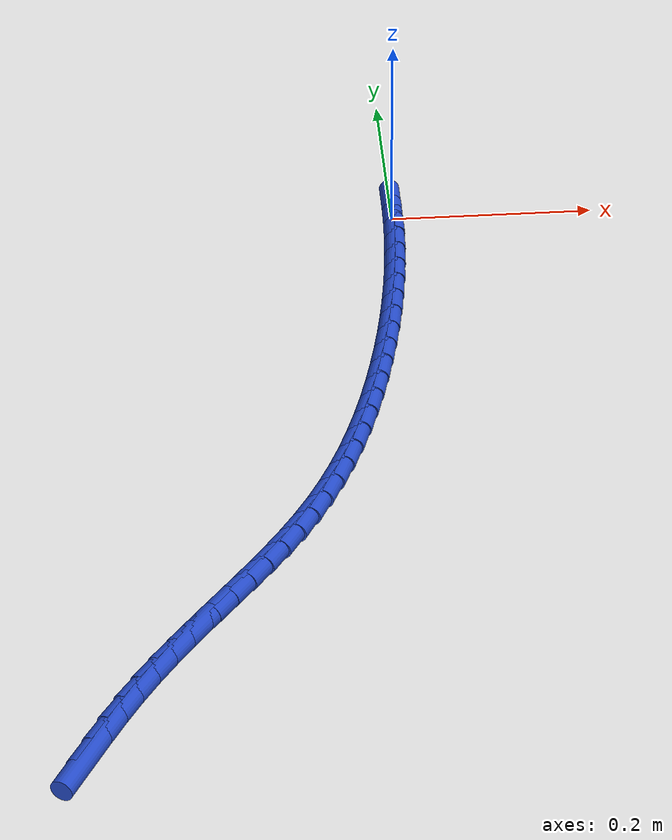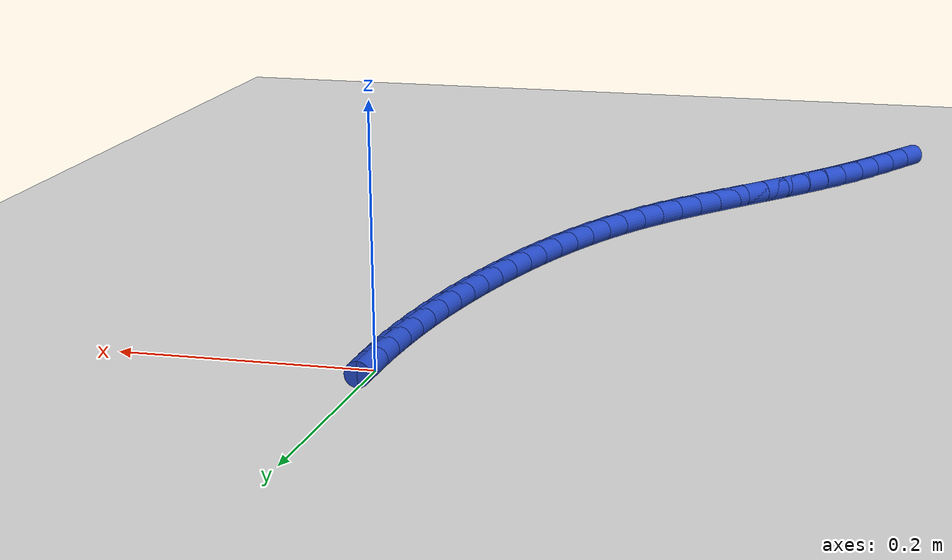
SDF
<sdf version="1.6">
 <world name="default">
  <model name="ground_plane">
   <static>1</static>
   <link name="link">
    <collision name="collision">
     <geometry><plane><normal>0 0 1</normal><size>100 100</size></plane></geometry>
     <surface><friction><ode><mu>100</mu><mu2>50</mu2></ode></friction></surface>
    </collision>
    <visual name="visual">
     <cast_shadows>0</cast_shadows>
     <geometry><plane><normal>0 0 1</normal><size>100 100</size></plane></geometry>
     <material>
      <script><uri>file://media/materials/scripts/gazebo.material</uri><name>Gazebo/WhiteGlow</name></script>
     </material>
    </visual>
   </link>
  </model>
  <model name="line">
   <link name="link_0">
    <pose>-1.6479873021779667e-17 0.0 0.01 0 1.57 1.5654204564833294</pose>
    <collision name="collision">
     <geometry><cylinder><radius>0.01</radius><length>0.08</length></cylinder></geometry>
    </collision>
    <visual name="visual">
     <material>
      <script><name>Gazebo/Blue</name><uri>file://media/materials/scripts/gazebo.material</uri></script>
     </material>
     <geometry><cylinder><radius>0.01</radius><length>0.08</length></cylinder></geometry>
    </visual>
   </link>
   <link name="link_238">
    <pose>-0.309870538612031 -0.744926974488012 0.01 0 1.57 1.0686161047486882</pose>
    <collision name="collision">
     <geometry><cylinder><radius>0.01</radius><length>0.08</length></cylinder></geometry>
    </collision>
    <visual name="visual">
     <material>
      <script><name>Gazebo/Blue</name><uri>file://media/materials/scripts/gazebo.material</uri></script>
     </material>
     <geometry><cylinder><radius>0.01</radius><length>0.08</length></cylinder></geometry>
    </visual>
   </link>
   <link name="link_239">
    <pose>-0.2969129126841725 -0.7213306199960554 0.01 0 1.57 1.052419311863767</pose>
    <collision name="collision">
     <geometry><cylinder><radius>0.01</radius><length>0.08</length></cylinder></geometry>
    </collision>
    <visual name="visual">
     <material>
      <script><name>Gazebo/Blue</name><uri>file://media/materials/scripts/gazebo.material</uri></script>
     </material>
     <geometry><cylinder><radius>0.01</radius><length>0.08</length></cylinder></geometry>
    </visual>
   </link>
   <link name="link_240">
    <pose>-0.2836207318588985 -0.6980277166041239 0.01 0 1.57 1.0267282334846566</pose>
    <collision name="collision">
     <geometry><cylinder><radius>0.01</radius><length>0.08</length></cylinder></geometry>
    </collision>
    <visual name="visual">
     <material>
      <script><name>Gazebo/Blue</name><uri>file://media/materials/scripts/gazebo.material</uri></script>
     </material>
     <geometry><cylinder><radius>0.01</radius><length>0.08</length></cylinder></geometry>
    </visual>
   </link>
   <link name="link_241">
    <pose>-0.26982788802805663 -0.6752286099682115 0.01 0 1.57 0.9920861693508077</pose>
    <collision name="collision">
     <geometry><cylinder><radius>0.01</radius><length>0.08</length></cylinder></geometry>
    </collision>
    <visual name="visual">
     <material>
      <script><name>Gazebo/Blue</name><uri>file://media/materials/scripts/gazebo.material</uri></script>
     </material>
     <geometry><cylinder><radius>0.01</radius><length>0.08</length></cylinder></geometry>
    </visual>
   </link>
   <link name="link_242">
    <pose>-0.25538652353177604 -0.6531242495241607 0.01 0 1.57 0.9586124981060093</pose>
    <collision name="collision">
     <geometry><cylinder><radius>0.01</radius><length>0.08</length></cylinder></geometry>
    </collision>
    <visual name="visual">
     <material>
      <script><name>Gazebo/Blue</name><uri>file://media/materials/scripts/gazebo.material</uri></script>
     </material>
     <geometry><cylinder><radius>0.01</radius><length>0.08</length></cylinder></geometry>
    </visual>
   </link>
   <link name="link_243">
    <pose>-0.24034264605525366 -0.6316995484037439 0.01 0 1.57 0.932827848580773</pose>
    <collision name="collision">
     <geometry><cylinder><radius>0.01</radius><length>0.08</length></cylinder></geometry>
    </collision>
    <visual name="visual">
     <material>
      <script><name>Gazebo/Blue</name><uri>file://media/materials/scripts/gazebo.material</uri></script>
     </material>
     <geometry><cylinder><radius>0.01</radius><length>0.08</length></cylinder></geometry>
    </visual>
   </link>
   <link name="link_244">
    <pose>-0.2248591647391064 -0.6108151791540717 0.01 0 1.57 0.9150758086695943</pose>
    <collision name="collision">
     <geometry><cylinder><radius>0.01</radius><length>0.08</length></cylinder></geometry>
    </collision>
    <visual name="visual">
     <material>
      <script><name>Gazebo/Blue</name><uri>file://media/materials/scripts/gazebo.material</uri></script>
     </material>
     <geometry><cylinder><radius>0.01</radius><length>0.08</length></cylinder></geometry>
    </visual>
   </link>
   <link name="link_245">
    <pose>-0.20910060074070222 -0.5903301011023262 0.01 0 1.57 0.9055422296610491</pose>
    <collision name="collision">
     <geometry><cylinder><radius>0.01</radius><length>0.08</length></cylinder></geometry>
    </collision>
    <visual name="visual">
     <material>
      <script><name>Gazebo/Blue</name><uri>file://media/materials/scripts/gazebo.material</uri></script>
     </material>
     <geometry><cylinder><radius>0.01</radius><length>0.08</length></cylinder></geometry>
    </visual>
   </link>
   <link name="link_246">
    <pose>-0.19323147521740755 -0.5701032735756887 0.01 0 1.57 0.9043736813544545</pose>
    <collision name="collision">
     <geometry><cylinder><radius>0.01</radius><length>0.08</length></cylinder></geometry>
    </collision>
    <visual name="visual">
     <material>
      <script><name>Gazebo/Blue</name><uri>file://media/materials/scripts/gazebo.material</uri></script>
     </material>
     <geometry><cylinder><radius>0.01</radius><length>0.08</length></cylinder></geometry>
    </visual>
   </link>
   <link name="link_247">
    <pose>-0.17741630932658894 -0.5499936559013391 0.01 0 1.57 0.9116953614590311</pose>
    <collision name="collision">
     <geometry><cylinder><radius>0.01</radius><length>0.08</length></cylinder></geometry>
    </collision>
    <visual name="visual">
     <material>
      <script><name>Gazebo/Blue</name><uri>file://media/materials/scripts/gazebo.material</uri></script>
     </material>
     <geometry><cylinder><radius>0.01</radius><length>0.08</length></cylinder></geometry>
    </visual>
   </link>
   <link name="link_248">
    <pose>-0.16181962422561427 -0.5298602074064601 0.01 0 1.57 0.927612382514279</pose>
    <collision name="collision">
     <geometry><cylinder><radius>0.01</radius><length>0.08</length></cylinder></geometry>
    </collision>
    <visual name="visual">
     <material>
      <script><name>Gazebo/Blue</name><uri>file://media/materials/scripts/gazebo.material</uri></script>
     </material>
     <geometry><cylinder><radius>0.01</radius><length>0.08</length></cylinder></geometry>
    </visual>
   </link>
   <link name="link_249">
    <pose>-0.14660594107184963 -0.5095618874182316 0.01 0 1.57 0.9521925450062194</pose>
    <collision name="collision">
     <geometry><cylinder><radius>0.01</radius><length>0.08</length></cylinder></geometry>
    </collision>
    <visual name="visual">
     <material>
      <script><name>Gazebo/Blue</name><uri>file://media/materials/scripts/gazebo.material</uri></script>
     </material>
     <geometry><cylinder><radius>0.01</radius><length>0.08</length></cylinder></geometry>
    </visual>
   </link>
   <link name="link_250">
    <pose>-0.13193978102266274 -0.48895765526383556 0.01 0 1.57 0.9854295387552882</pose>
    <collision name="collision">
     <geometry><cylinder><radius>0.01</radius><length>0.08</length></cylinder></geometry>
    </collision>
    <visual name="visual">
     <material>
      <script><name>Gazebo/Blue</name><uri>file://media/materials/scripts/gazebo.material</uri></script>
     </material>
     <geometry><cylinder><radius>0.01</radius><length>0.08</length></cylinder></geometry>
    </visual>
   </link>
   <link name="link_251">
    <pose>-0.11798566523541987 -0.4679064702704524 0.01 0 1.57 1.0271843822392486</pose>
    <collision name="collision">
     <geometry><cylinder><radius>0.01</radius><length>0.08</length></cylinder></geometry>
    </collision>
    <visual name="visual">
     <material>
      <script><name>Gazebo/Blue</name><uri>file://media/materials/scripts/gazebo.material</uri></script>
     </material>
     <geometry><cylinder><radius>0.01</radius><length>0.08</length></cylinder></geometry>
    </visual>
   </link>
   <link name="link_252">
    <pose>-0.10490805973763531 -0.44626734732469464 0.01 0 1.57 1.0744704741376898</pose>
    <collision name="collision">
     <geometry><cylinder><radius>0.01</radius><length>0.08</length></cylinder></geometry>
    </collision>
    <visual name="visual">
     <material>
      <script><name>Gazebo/Blue</name><uri>file://media/materials/scripts/gazebo.material</uri></script>
     </material>
     <geometry><cylinder><radius>0.01</radius><length>0.08</length></cylinder></geometry>
    </visual>
   </link>
   <link name="link_253">
    <pose>-0.09282188055514717 -0.42394923741283247 0.01 0 1.57 1.1195153782761058</pose>
    <collision name="collision">
     <geometry><cylinder><radius>0.01</radius><length>0.08</length></cylinder></geometry>
    </collision>
    <visual name="visual">
     <material>
      <script><name>Gazebo/Blue</name><uri>file://media/materials/scripts/gazebo.material</uri></script>
     </material>
     <geometry><cylinder><radius>0.01</radius><length>0.08</length></cylinder></geometry>
    </visual>
   </link>
   <link name="link_254">
    <pose>-0.08170128475828124 -0.4010029472828564 0.01 0 1.57 1.1610670833392958</pose>
    <collision name="collision">
     <geometry><cylinder><radius>0.01</radius><length>0.08</length></cylinder></geometry>
    </collision>
    <visual name="visual">
     <material>
      <script><name>Gazebo/Blue</name><uri>file://media/materials/scripts/gazebo.material</uri></script>
     </material>
     <geometry><cylinder><radius>0.01</radius><length>0.08</length></cylinder></geometry>
    </visual>
   </link>
   <link name="link_255">
    <pose>-0.07149560392829585 -0.3775043026142214 0.01 0 1.57 1.199261901386768</pose>
    <collision name="collision">
     <geometry><cylinder><radius>0.01</radius><length>0.08</length></cylinder></geometry>
    </collision>
    <visual name="visual">
     <material>
      <script><name>Gazebo/Blue</name><uri>file://media/materials/scripts/gazebo.material</uri></script>
     </material>
     <geometry><cylinder><radius>0.01</radius><length>0.08</length></cylinder></geometry>
    </visual>
   </link>
   <link name="link_256">
    <pose>-0.06215416964645071 -0.3535291290863856 0.01 0 1.57 1.2342567636386277</pose>
    <collision name="collision">
     <geometry><cylinder><radius>0.01</radius><length>0.08</length></cylinder></geometry>
    </collision>
    <visual name="visual">
     <material>
      <script><name>Gazebo/Blue</name><uri>file://media/materials/scripts/gazebo.material</uri></script>
     </material>
     <geometry><cylinder><radius>0.01</radius><length>0.08</length></cylinder></geometry>
    </visual>
   </link>
   <link name="link_257">
    <pose>-0.053626313494004534 -0.3291532523788048 0.01 0 1.57 1.2662171981027837</pose>
    <collision name="collision">
     <geometry><cylinder><radius>0.01</radius><length>0.08</length></cylinder></geometry>
    </collision>
    <visual name="visual">
     <material>
      <script><name>Gazebo/Blue</name><uri>file://media/materials/scripts/gazebo.material</uri></script>
     </material>
     <geometry><cylinder><radius>0.01</radius><length>0.08</length></cylinder></geometry>
    </visual>
   </link>
   <link name="link_258">
    <pose>-0.045861367052216155 -0.3044524981709348 0.01 0 1.57 1.2953081285402386</pose>
    <collision name="collision">
     <geometry><cylinder><radius>0.01</radius><length>0.08</length></cylinder></geometry>
    </collision>
    <visual name="visual">
     <material>
      <script><name>Gazebo/Blue</name><uri>file://media/materials/scripts/gazebo.material</uri></script>
     </material>
     <geometry><cylinder><radius>0.01</radius><length>0.08</length></cylinder></geometry>
    </visual>
   </link>
   <link name="link_259">
    <pose>-0.03880866190234508 -0.2795026921422336 0.01 0 1.57 1.321687040951242</pose>
    <collision name="collision">
     <geometry><cylinder><radius>0.01</radius><length>0.08</length></cylinder></geometry>
    </collision>
    <visual name="visual">
     <material>
      <script><name>Gazebo/Blue</name><uri>file://media/materials/scripts/gazebo.material</uri></script>
     </material>
     <geometry><cylinder><radius>0.01</radius><length>0.08</length></cylinder></geometry>
    </visual>
   </link>
   <link name="link_260">
    <pose>-0.032417529625649956 -0.25437965997215634 0.01 0 1.57 1.3454990874205766</pose>
    <collision name="collision">
     <geometry><cylinder><radius>0.01</radius><length>0.08</length></cylinder></geometry>
    </collision>
    <visual name="visual">
     <material>
      <script><name>Gazebo/Blue</name><uri>file://media/materials/scripts/gazebo.material</uri></script>
     </material>
     <geometry><cylinder><radius>0.01</radius><length>0.08</length></cylinder></geometry>
    </visual>
   </link>
   <link name="link_261">
    <pose>-0.026637303420552975 -0.22915922467600702 0.01 0 1.57 1.3673799473251314</pose>
    <collision name="collision">
     <geometry><cylinder><radius>0.01</radius><length>0.08</length></cylinder></geometry>
    </collision>
    <visual name="visual">
     <material>
      <script><name>Gazebo/Blue</name><uri>file://media/materials/scripts/gazebo.material</uri></script>
     </material>
     <geometry><cylinder><radius>0.01</radius><length>0.08</length></cylinder></geometry>
    </visual>
   </link>
   <link name="link_262">
    <pose>-0.02142726911015164 -0.20390081306884764 0.01 0 1.57 1.3890879597974994</pose>
    <collision name="collision">
     <geometry><cylinder><radius>0.01</radius><length>0.08</length></cylinder></geometry>
    </collision>
    <visual name="visual">
     <material>
      <script><name>Gazebo/Blue</name><uri>file://media/materials/scripts/gazebo.material</uri></script>
     </material>
     <geometry><cylinder><radius>0.01</radius><length>0.08</length></cylinder></geometry>
    </visual>
   </link>
   <link name="link_263">
    <pose>-0.016780214857885816 -0.17860865938101292 0.01 0 1.57 1.4109511447151635</pose>
    <collision name="collision">
     <geometry><cylinder><radius>0.01</radius><length>0.08</length></cylinder></geometry>
    </collision>
    <visual name="visual">
     <material>
      <script><name>Gazebo/Blue</name><uri>file://media/materials/scripts/gazebo.material</uri></script>
     </material>
     <geometry><cylinder><radius>0.01</radius><length>0.08</length></cylinder></geometry>
    </visual>
   </link>
   <link name="link_264">
    <pose>-0.012695970702805051 -0.15327539688265324 0.01 0 1.57 1.4329309005835245</pose>
    <collision name="collision">
     <geometry><cylinder><radius>0.01</radius><length>0.08</length></cylinder></geometry>
    </collision>
    <visual name="visual">
     <material>
      <script><name>Gazebo/Blue</name><uri>file://media/materials/scripts/gazebo.material</uri></script>
     </material>
     <geometry><cylinder><radius>0.01</radius><length>0.08</length></cylinder></geometry>
    </visual>
   </link>
   <link name="link_265">
    <pose>-0.009174366683959415 -0.12789365884392212 0.01 0 1.57 1.4549876294121382</pose>
    <collision name="collision">
     <geometry><cylinder><radius>0.01</radius><length>0.08</length></cylinder></geometry>
    </collision>
    <visual name="visual">
     <material>
      <script><name>Gazebo/Blue</name><uri>file://media/materials/scripts/gazebo.material</uri></script>
     </material>
     <geometry><cylinder><radius>0.01</radius><length>0.08</length></cylinder></geometry>
    </visual>
   </link>
   <link name="link_266">
    <pose>-0.00621523284039852 -0.10245607853496991 0.01 0 1.57 1.4770810805651957</pose>
    <collision name="collision">
     <geometry><cylinder><radius>0.01</radius><length>0.08</length></cylinder></geometry>
    </collision>
    <visual name="visual">
     <material>
      <script><name>Gazebo/Blue</name><uri>file://media/materials/scripts/gazebo.material</uri></script>
     </material>
     <geometry><cylinder><radius>0.01</radius><length>0.08</length></cylinder></geometry>
    </visual>
   </link>
   <link name="link_267">
    <pose>-0.00381839921117237 -0.07695528922595021 0.01 0 1.57 1.4991707089774124</pose>
    <collision name="collision">
     <geometry><cylinder><radius>0.01</radius><length>0.08</length></cylinder></geometry>
    </collision>
    <visual name="visual">
     <material>
      <script><name>Gazebo/Blue</name><uri>file://media/materials/scripts/gazebo.material</uri></script>
     </material>
     <geometry><cylinder><radius>0.01</radius><length>0.08</length></cylinder></geometry>
    </visual>
   </link>
   <link name="link_268">
    <pose>-0.0019836958353306898 -0.05138392418701416 0.01 0 1.57 1.5212160398891776</pose>
    <collision name="collision">
     <geometry><cylinder><radius>0.01</radius><length>0.08</length></cylinder></geometry>
    </collision>
    <visual name="visual">
     <material>
      <script><name>Gazebo/Blue</name><uri>file://media/materials/scripts/gazebo.material</uri></script>
     </material>
     <geometry><cylinder><radius>0.01</radius><length>0.08</length></cylinder></geometry>
    </visual>
   </link>
   <link name="link_269">
    <pose>-0.0007109527519232742 -0.025734616688312967 0.01 0 1.57 1.5431770319858433</pose>
    <collision name="collision">
     <geometry><cylinder><radius>0.01</radius><length>0.08</length></cylinder></geometry>
    </collision>
    <visual name="visual">
     <material>
      <script><name>Gazebo/Blue</name><uri>file://media/materials/scripts/gazebo.material</uri></script>
     </material>
     <geometry><cylinder><radius>0.01</radius><length>0.08</length></cylinder></geometry>
    </visual>
   </link>
   <link name="link_270">
    <pose>-2.688821387764051e-17 -1.3183898417423734e-16 0.01 0 1.57 1.5650144308921028</pose>
    <collision name="collision">
     <geometry><cylinder><radius>0.01</radius><length>0.08</length></cylinder></geometry>
    </collision>
    <visual name="visual">
     <material>
      <script><name>Gazebo/Blue</name><uri>file://media/materials/scripts/gazebo.material</uri></script>
     </material>
     <geometry><cylinder><radius>0.01</radius><length>0.08</length></cylinder></geometry>
    </visual>
   </link>
  </model>
 </world>
</sdf>
